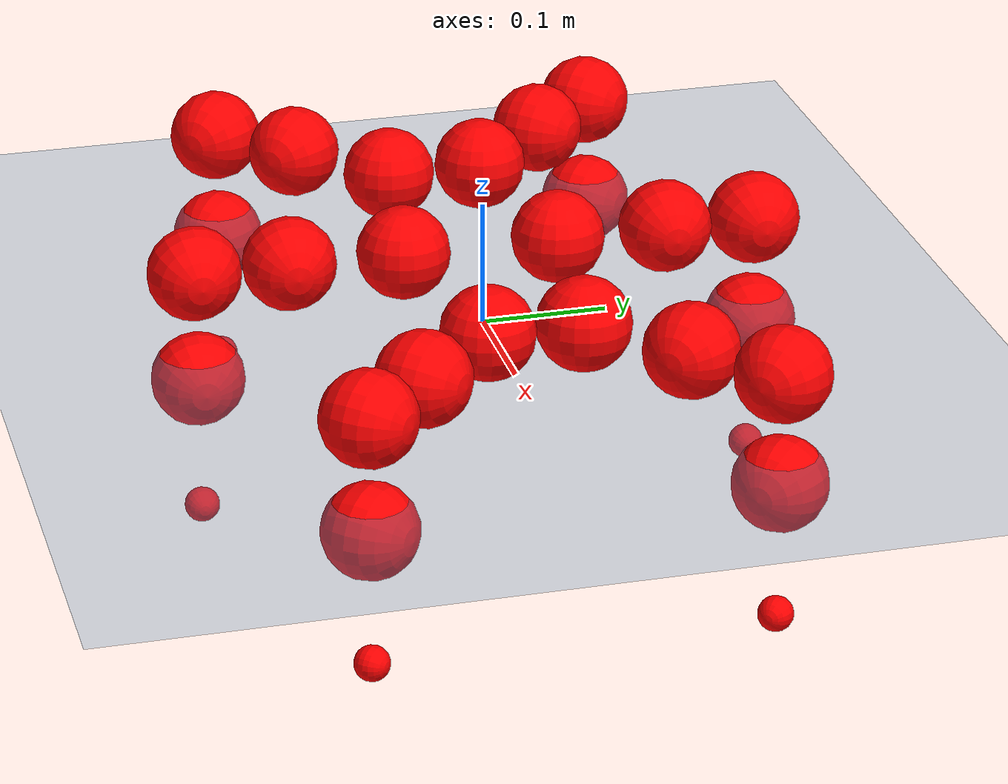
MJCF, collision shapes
<mujoco model="Golem">
  <compiler angle="radian" assetdir="assets" balanceinertia="true" inertiafromgeom="false"/>

  <option timestep="0.005" density="1.2" viscosity="2e-05"/>

  <size nkey="1"/>

  <visual>
    <quality shadowsize="8192"/>
    <map shadowclip="0.5"/>
  </visual>

  <default>
    <default class="/">
      <joint armature="0.01" damping="0.01" frictionloss="0.01"/>
      <geom contype="0" conaffinity="0" group="1" solref="-1000 -80"/>
      <site size="0.01 0.005 0.005" group="5"/>
      <general forcelimited="true" biastype="affine" gainprm="25" biasprm="0 -25 -0.5"/>
      <default class="visual">
        <geom type="mesh" group="2"/>
      </default>
      <default class="collision">
        <geom group="3"/>
      </default>
      <default class="foot">
        <geom size="0.01 0 0" condim="6" group="4" priority="1" solimp="0.015 1 0.01"/>
      </default>
      <default class="reward_collision_sphere">
        <geom group="5" rgba="1 0 0 1"/>
      </default>
    </default>
  </default>

  <asset>
    <texture type="skybox" colorspace="auto" name="//unnamed_texture_0" builtin="gradient" rgb1="0.95 0.95 0.95" rgb2="0.95 0.95 0.95" width="100" height="600"/>
    <texture type="2d" colorspace="auto" name="texplane" builtin="checker" rgb1="0.345 0.575 0.748" rgb2="0.345 0.575 0.748" markrgb="1 1 1" width="512" height="512"/>
    <material name="MatPlane" class="/" texture="texplane" texuniform="true" texrepeat="2 2" specular="0.9"/>
    <mesh name="body" class="/" file="body.stl" scale="0.001 0.001 0.001"/>
    <mesh name="coxa" class="/" file="coxa.stl" scale="0.001 0.001 0.001"/>
    <mesh name="femur" class="/" file="femur.stl" scale="0.001 0.001 0.001"/>
    <mesh name="tibia" class="/" file="tibia.stl" scale="0.001 0.001 0.001"/>
    <mesh name="tarsus" class="/" file="tarsus.stl" scale="0.001 0.001 0.001"/>
  </asset>

  <worldbody>
    <geom name="floor" class="/" size="100 100 0.125" type="plane" group="0" material="MatPlane"/>
    <light name="toplight_shadow" class="/" pos="0 0 5" dir="0.0990148 0.0990148 -0.990148" type="directional" ambient="0.04 0.04 0.04" diffuse="0.55 0.55 0.55" specular="0.12 0.12 0.12"/>
    <light name="toplight_fill" class="/" pos="0 0 5" dir="0.0990148 0.0990148 -0.990148" type="directional" castshadow="false" ambient="0.04 0.04 0.04" diffuse="0.3 0.3 0.3" specular="0.08 0.08 0.08"/>
    <body name="trunk" pos="0.00027386 -0.000872407 -0.000795923" quat="1 1.95521e-05 1.50242e-05 -1.13938e-05">
      <inertial pos="0.000808611 0.000111813 -0.00360115" quat="1 -8.40201e-05 4.67833e-05 -8.94218e-05" mass="2.91523" diaginertia="0.0114045 0.00175554 0.0126958"/>
      <joint name="//unnamed_joint_0" type="free"/>
      <geom name="//unnamed_geom_1" class="/" pos="0 0 0.0671977" quat="1 0 0 0" type="mesh" rgba="0.9 0.9 0.9 1" mesh="body"/>
      <site name="imu" class="/" pos="0.133036 -0.00102698 0.106297" size="0.00927667"/>
      <camera name="track" class="/" pos="0 -1.41573 0" quat="0.707107 0.707107 0 0" mode="trackcom"/>
      <camera name="ego_camera" class="/" pos="0.133273 0 0.104996" quat="-0.5 -0.5 0.5 0.5"/>
      <body name="coxa_RR" pos="-0.181809 -0.0588957 0.067275" quat="0.38269 3.76529e-05 -7.83909e-06 -0.923877">
        <inertial pos="-0.000262529 -0.000493178 0.00114878" quat="0.999992 0.00047807 -0.00392396 -0.000735956" mass="0.159574" diaginertia="0.0115084 0.00180554 0.0129462"/>
        <joint name="coxa_joint_RR" class="/" pos="0 0 0" axis="-0.00357465 0.00184215 -0.999992" range="-3.13739 3.13646" armature="0.00943911" damping="0.00832784" frictionloss="0.00928738"/>
        <geom name="//unnamed_geom_2" class="/" type="mesh" rgba="0.2 0.2 0.2 1" mesh="coxa"/>
        <geom name="//unnamed_geom_3" class="reward_collision_sphere" size="0.0371067" pos="-0.0307552 0 0"/>
        <body name="femur_RR" pos="0.0611181 0.000698512 0.000334732" quat="0.500052 -0.499952 0.50007 0.499926">
          <inertial pos="0.000674655 0.000148858 -0.000193472" quat="0.999999 -2.57789e-05 -0.000260332 0.000985414" mass="0.159763" diaginertia="0.0113443 0.00178532 0.012905"/>
          <joint name="femur_joint_RR" class="/" pos="0 0 0" axis="-0.000853211 -0.000412107 -1" range="-3.13442 3.15512" armature="0.00908645" damping="0.001596" frictionloss="0.00907601"/>
          <geom name="//unnamed_geom_4" class="/" type="mesh" rgba="0.9 0.9 0.9 1" mesh="femur"/>
          <geom name="//unnamed_geom_5" class="reward_collision_sphere" size="0.0371067"/>
          <body name="tibia_RR" pos="0.00132802 -0.0773917 0.00105273" quat="6.3565e-05 1 8.42086e-05 -4.9853e-05">
            <inertial pos="0.00032296 -0.000336492 0.000178448" quat="1 -7.14488e-05 -0.000161617 6.64485e-05" mass="0.16015" diaginertia="0.0114683 0.00178867 0.0130429"/>
            <joint name="tibia_joint_RR" class="/" pos="0 0 0" axis="-0.00195209 -0.0013114 0.999997" range="-3.14943 3.12082" armature="0.00910932" damping="0" frictionloss="0.00929521"/>
            <geom name="//unnamed_geom_6" class="/" type="mesh" rgba="0.2 0.2 0.2 1" mesh="tibia"/>
            <geom name="//unnamed_geom_7" class="reward_collision_sphere" size="0.0371067"/>
            <body name="tarsus_RR" pos="0.0899494 0.000234863 -0.000554813" quat="1 -4.50741e-05 -5.03101e-06 -4.67955e-05">
              <inertial pos="0.0626261 0.000732824 -0.000680789" quat="0.499579 0.498519 0.501399 0.500499" mass="0.160649" diaginertia="0.0114053 0.00176885 0.0128291"/>
              <joint name="tarsus_joint_RR" class="/" pos="0 0 0" axis="0.000404542 0.00510749 0.999987" stiffness="0.00190408" range="-3.13178 3.12028" armature="0.00910736" damping="0.0410189" frictionloss="0.00957689"/>
              <geom name="//unnamed_geom_8" class="/" type="mesh" rgba="0.9 0.9 0.9 1" mesh="tarsus"/>
              <geom name="foot_1" class="foot" size="0.00924538" pos="0.11482 0 0" quat="0 -0.707107 0 0.707107"/>
              <geom name="//unnamed_geom_10" class="reward_collision_sphere" size="0.0371067"/>
              <geom name="//unnamed_geom_11" class="reward_collision_sphere" size="0.013915" pos="0.110206 0 0"/>
              <site name="foot_1" class="foot" pos="0.11482 0 0" quat="0 -0.707107 0 0.707107" size="0.00927667"/>
            </body>
          </body>
        </body>
      </body>
      <body name="coxa_RM" pos="0.000116881 -0.0939876 0.0678486" quat="0.707285 0.000324232 -3.46183e-05 -0.706928">
        <inertial pos="-0.000558874 0.000150604 0.00101291" quat="0.999996 0.000582726 0.00180447 0.00198509" mass="0.160409" diaginertia="0.0114195 0.00176593 0.0126084"/>
        <joint name="coxa_joint_RM" class="/" pos="0 0 0" axis="0.00208033 -0.00187198 -0.999996" range="-3.13473 3.14559" armature="0.00922941" damping="0.0112664" frictionloss="0.0088563"/>
        <geom name="//unnamed_geom_12" class="/" type="mesh" rgba="0.2 0.2 0.2 1" mesh="coxa"/>
        <geom name="//unnamed_geom_13" class="reward_collision_sphere" size="0.0371067" pos="-0.0307552 0 0"/>
        <body name="femur_RM" pos="0.0599591 -0.00105106 -6.52836e-05" quat="0.499952 -0.500021 0.499988 0.500038">
          <inertial pos="0.000459186 0.00018242 5.92462e-05" quat="1 0.000178588 0.000135429 3.36182e-05" mass="0.161103" diaginertia="0.0114067 0.00180083 0.0128606"/>
          <joint name="femur_joint_RM" class="/" pos="0 0 0" axis="0.00414006 0.00209199 -0.999989" range="-3.14411 3.13899" armature="0.00955407" damping="0.00803325" frictionloss="0.00927565"/>
          <geom name="//unnamed_geom_14" class="/" type="mesh" rgba="0.9 0.9 0.9 1" mesh="femur"/>
          <geom name="//unnamed_geom_15" class="reward_collision_sphere" size="0.0371067"/>
          <body name="tibia_RM" pos="0.000162272 -0.0749986 -0.000193971" quat="-1.17158e-06 1 1.86969e-05 -3.0202e-05">
            <inertial pos="-0.00077585 -0.000558128 -0.000138974" quat="1 0.000706743 5.00239e-06 -1.13979e-05" mass="0.160389" diaginertia="0.0113119 0.00179296 0.0127283"/>
            <joint name="tibia_joint_RM" class="/" pos="0 0 0" axis="-0.000360515 -0.00146248 0.999999" range="-3.13694 3.15644" armature="0.00931806" damping="0.0106794" frictionloss="0.00949862"/>
            <geom name="//unnamed_geom_16" class="/" type="mesh" rgba="0.2 0.2 0.2 1" mesh="tibia"/>
            <geom name="//unnamed_geom_17" class="reward_collision_sphere" size="0.0371067"/>
            <body name="tarsus_RM" pos="0.0896447 -0.000354173 -0.000292954" quat="1 -4.58551e-05 7.52863e-05 -2.57886e-05">
              <inertial pos="0.0620872 0.000683558 -0.000413253" quat="0.501135 0.500558 0.499863 0.498439" mass="0.160526" diaginertia="0.0113638 0.00179817 0.0128688"/>
              <joint name="tarsus_joint_RM" class="/" pos="0 0 0" axis="3.83866e-05 3.863e-05 1" range="-3.15681 3.13166" armature="0.00905993" damping="0.00781451" frictionloss="0.00921668"/>
              <geom name="//unnamed_geom_18" class="/" type="mesh" rgba="0.9 0.9 0.9 1" mesh="tarsus"/>
              <geom name="foot_2" class="foot" size="0.00944462" pos="0.11482 0 0" quat="0 -0.707107 0 0.707107"/>
              <geom name="//unnamed_geom_20" class="reward_collision_sphere" size="0.0371067"/>
              <geom name="//unnamed_geom_21" class="reward_collision_sphere" size="0.013915" pos="0.110206 0 0"/>
              <site name="foot_2" class="foot" pos="0.11482 0 0" quat="0 -0.707107 0 0.707107" size="0.00927667"/>
            </body>
          </body>
        </body>
      </body>
      <body name="coxa_RF" pos="0.182969 -0.0587225 0.0678151" quat="0.923872 -6.48853e-05 0.000109901 -0.382701">
        <inertial pos="2.73361e-06 -0.000948615 -0.000280234" quat="1 3.64849e-06 4.04869e-05 9.44304e-05" mass="0.160085" diaginertia="0.0113469 0.00178037 0.0128617"/>
        <joint name="coxa_joint_RF" class="/" pos="0 0 0" axis="-0.000415166 0.000300404 -1" range="-3.14124 3.14715" armature="0.00909262" damping="0.0140618" frictionloss="0.00913501"/>
        <geom name="//unnamed_geom_22" class="/" type="mesh" rgba="0.2 0.2 0.2 1" mesh="coxa"/>
        <geom name="//unnamed_geom_23" class="reward_collision_sphere" size="0.0371067" pos="-0.0307552 0 0"/>
        <body name="femur_RF" pos="0.0602836 -0.000799905 -0.000618621" quat="0.499935 -0.500015 0.500065 0.499984">
          <inertial pos="-0.000196356 0.000632991 -0.000231735" quat="0.999998 -0.00109501 -0.00173685 0.000676016" mass="0.160889" diaginertia="0.0113232 0.0018107 0.0128643"/>
          <joint name="femur_joint_RF" class="/" pos="0 0 0" axis="0.000186169 0.000613831 -1" range="-3.14687 3.14136" armature="0.0094466" damping="0.0063879" frictionloss="0.00898125"/>
          <geom name="//unnamed_geom_24" class="/" type="mesh" rgba="0.9 0.9 0.9 1" mesh="femur"/>
          <geom name="//unnamed_geom_25" class="reward_collision_sphere" size="0.0371067"/>
          <body name="tibia_RF" pos="0.00018505 -0.0759363 0.000358528" quat="-5.37753e-07 1 2.93327e-07 1.12082e-06">
            <inertial pos="-0.000558808 0.000524508 -0.000470886" quat="1 0.00023056 -9.19266e-06 -0.000164485" mass="0.160713" diaginertia="0.0115171 0.00176832 0.0127901"/>
            <joint name="tibia_joint_RF" class="/" pos="0 0 0" axis="0.000126796 0.000599446 1" range="-3.14723 3.12888" armature="0.00932379" damping="0.00827797" frictionloss="0.00927477"/>
            <geom name="//unnamed_geom_26" class="/" type="mesh" rgba="0.2 0.2 0.2 1" mesh="tibia"/>
            <geom name="//unnamed_geom_27" class="reward_collision_sphere" size="0.0371067"/>
            <body name="tarsus_RF" pos="0.0908014 -0.000111901 -1.85093e-05" quat="1 0.000117782 3.07208e-05 8.66898e-05">
              <inertial pos="0.0606943 0.000633364 9.26731e-05" quat="0.500123 0.49937 0.500394 0.500112" mass="0.160295" diaginertia="0.0114002 0.00176905 0.0126404"/>
              <joint name="tarsus_joint_RF" class="/" pos="0 0 0" axis="-0.000161403 0.00076205 1" stiffness="0.000297926" range="-3.1341 3.12926" armature="0.00885877" damping="0" frictionloss="0.00961288"/>
              <geom name="//unnamed_geom_28" class="/" type="mesh" rgba="0.9 0.9 0.9 1" mesh="tarsus"/>
              <geom name="foot_3" class="foot" size="0.00902079" pos="0.11482 0 0" quat="0 -0.707107 0 0.707107"/>
              <geom name="//unnamed_geom_30" class="reward_collision_sphere" size="0.0371067"/>
              <geom name="//unnamed_geom_31" class="reward_collision_sphere" size="0.013915" pos="0.110206 0 0"/>
              <site name="foot_3" class="foot" pos="0.11482 0 0" quat="0 -0.707107 0 0.707107" size="0.00927667"/>
            </body>
          </body>
        </body>
      </body>
      <body name="coxa_LR" pos="-0.182142 0.0611322 0.0678481" quat="0.382782 -2.22343e-05 9.71128e-05 0.923839">
        <inertial pos="7.9574e-05 -0.000869017 -0.000234002" quat="0.999997 0.00175026 0.000236221 -0.0013933" mass="0.159788" diaginertia="0.0112136 0.00177862 0.0126572"/>
        <joint name="coxa_joint_LR" class="/" pos="0 0 0" axis="-0.00135694 -0.0032686 -0.999994" range="-3.14586 3.15337" armature="0.00967811" damping="0.00521741" frictionloss="0.00953472"/>
        <geom name="//unnamed_geom_32" class="/" type="mesh" rgba="0.2 0.2 0.2 1" mesh="coxa"/>
        <geom name="//unnamed_geom_33" class="reward_collision_sphere" size="0.0371067" pos="-0.0307552 0 0"/>
        <body name="femur_LR" pos="0.0608715 -0.00156769 -6.07744e-05" quat="0.49995 -0.500087 0.500034 0.49993">
          <inertial pos="0.000121258 -0.000373515 0.000194756" quat="0.999991 -0.00310547 0.00225954 -0.00151981" mass="0.159557" diaginertia="0.0113583 0.00176842 0.0128269"/>
          <joint name="femur_joint_LR" class="/" pos="0 0 0" axis="-0.00111979 0.00278761 0.999995" range="-3.13435 3.14455" armature="0.00953436" damping="0.00339644" frictionloss="0.00898817"/>
          <geom name="//unnamed_geom_34" class="/" type="mesh" rgba="0.9 0.9 0.9 1" mesh="femur"/>
          <geom name="//unnamed_geom_35" class="reward_collision_sphere" size="0.0371067"/>
          <body name="tibia_LR" pos="0.000814975 -0.0774691 -0.0020749" quat="-1.36425e-05 1 -9.45471e-06 -9.91663e-06">
            <inertial pos="-0.000233114 -3.20399e-05 1.44753e-05" quat="0.999999 -0.000745431 -0.00152168 -9.00077e-05" mass="0.158446" diaginertia="0.0111869 0.0017551 0.0126491"/>
            <joint name="tibia_joint_LR" class="/" pos="0 0 0" axis="-0.00365497 0.00358561 -0.999987" range="-3.12415 3.15023" armature="0.00939115" damping="0.00388904" frictionloss="0.00914107"/>
            <geom name="//unnamed_geom_36" class="/" type="mesh" rgba="0.2 0.2 0.2 1" mesh="tibia"/>
            <geom name="//unnamed_geom_37" class="reward_collision_sphere" size="0.0371067"/>
            <body name="tarsus_LR" pos="0.0907136 0.000685465 0.00119517" quat="1 -0.000107571 1.21496e-05 0.000108899">
              <inertial pos="0.0625287 0.000516469 -0.000488765" quat="0.50021 0.500001 0.500034 0.499754" mass="0.161678" diaginertia="0.0113278 0.00179712 0.0128277"/>
              <joint name="tarsus_joint_LR" class="/" pos="0 0 0" axis="0.00232603 0.00223076 -0.999995" range="-3.13064 3.14606" armature="0.00919555" damping="0.00414502" frictionloss="0.00925893"/>
              <geom name="//unnamed_geom_38" class="/" type="mesh" rgba="0.9 0.9 0.9 1" mesh="tarsus"/>
              <geom name="foot_4" class="foot" size="0.00876877" pos="0.11482 0 0" quat="0.707107 0 -0.707107 0"/>
              <geom name="//unnamed_geom_40" class="reward_collision_sphere" size="0.0371067"/>
              <geom name="//unnamed_geom_41" class="reward_collision_sphere" size="0.013915" pos="0.110206 0 0"/>
              <site name="foot_4" class="foot" pos="0.11482 0 0" quat="0.707107 0 -0.707107 0" size="0.00927667"/>
            </body>
          </body>
        </body>
      </body>
      <body name="coxa_LM" pos="-0.0016594 0.0929221 0.0670941" quat="0.707144 1.137e-05 -0.000173568 0.70707">
        <inertial pos="0.000579991 0.000111853 0.000277609" quat="0.99999 -0.00394908 0.00171655 0.000887535" mass="0.159878" diaginertia="0.0114484 0.00178053 0.0127601"/>
        <joint name="coxa_joint_LM" class="/" pos="0 0 0" axis="-0.000542019 2.47124e-05 -1" range="-3.14673 3.13271" armature="0.00899014" damping="0.0100714" frictionloss="0.00900955"/>
        <geom name="//unnamed_geom_42" class="/" type="mesh" rgba="0.2 0.2 0.2 1" mesh="coxa"/>
        <geom name="//unnamed_geom_43" class="reward_collision_sphere" size="0.0371067" pos="-0.0307552 0 0"/>
        <body name="femur_LM" pos="0.0579571 0.00163359 -0.00115784" quat="0.499921 -0.499658 0.500447 0.499974">
          <inertial pos="-0.000752884 0.000315038 0.000718053" quat="0.999999 0.00113446 -0.000130486 -0.000449834" mass="0.16044" diaginertia="0.0112664 0.0017658 0.0127905"/>
          <joint name="femur_joint_LM" class="/" pos="0 0 0" axis="0.000486307 -0.00113295 0.999999" stiffness="0.00046386" range="-3.1377 3.15012" armature="0.00891205" damping="0.00057689" frictionloss="0.00920767"/>
          <geom name="//unnamed_geom_44" class="/" type="mesh" rgba="0.9 0.9 0.9 1" mesh="femur"/>
          <geom name="//unnamed_geom_45" class="reward_collision_sphere" size="0.0371067"/>
          <body name="tibia_LM" pos="0.00099791 -0.0738514 0.0012279" quat="0.000364563 1 0.000165921 6.29025e-05">
            <inertial pos="0.00032193 -0.00131467 -3.91936e-05" quat="0.999991 0.000930673 0.000894156 0.00415755" mass="0.159849" diaginertia="0.0113269 0.00177426 0.0127665"/>
            <joint name="tibia_joint_LM" class="/" pos="0 0 0" axis="2.03737e-05 -0.00151733 -0.999999" range="-3.13806 3.14336" armature="0.00925422" damping="0" frictionloss="0.00964262"/>
            <geom name="//unnamed_geom_46" class="/" type="mesh" rgba="0.2 0.2 0.2 1" mesh="tibia"/>
            <geom name="//unnamed_geom_47" class="reward_collision_sphere" size="0.0371067"/>
            <body name="tarsus_LM" pos="0.089412 -0.000162869 -0.00179316" quat="1 -9.82521e-05 -0.000372162 4.21875e-05">
              <inertial pos="0.0627652 -0.000186614 0.000624407" quat="0.500003 0.500064 0.500053 0.49988" mass="0.156661" diaginertia="0.0112685 0.0017518 0.0125381"/>
              <joint name="tarsus_joint_LM" class="/" pos="0 0 0" axis="0.000837555 1.87901e-05 -1" range="-3.12572 3.14686" armature="0.00923577" damping="0" frictionloss="0.00913517"/>
              <geom name="//unnamed_geom_48" class="/" type="mesh" rgba="0.9 0.9 0.9 1" mesh="tarsus"/>
              <geom name="foot_5" class="foot" size="0.00923213" pos="0.11482 0 0" quat="0.707107 0 -0.707107 0"/>
              <geom name="//unnamed_geom_50" class="reward_collision_sphere" size="0.0371067"/>
              <geom name="//unnamed_geom_51" class="reward_collision_sphere" size="0.013915" pos="0.110206 0 0"/>
              <site name="foot_5" class="foot" pos="0.11482 0 0" quat="0.707107 0 -0.707107 0" size="0.00927667"/>
            </body>
          </body>
        </body>
      </body>
      <body name="coxa_LF" pos="0.183162 0.059518 0.0670015" quat="0.923888 -0.000107997 0.000134682 0.382662">
        <inertial pos="0.000243339 -0.000250893 0.000548883" quat="0.999991 0.00217287 -0.00201484 -0.00292444" mass="0.160597" diaginertia="0.0112276 0.00177145 0.0126687"/>
        <joint name="coxa_joint_LF" class="/" pos="0 0 0" axis="-0.00288679 8.68071e-05 -0.999996" range="-3.12744 3.15054" armature="0.00921782" damping="0.00123807" frictionloss="0.009675"/>
        <geom name="//unnamed_geom_52" class="/" type="mesh" rgba="0.2 0.2 0.2 1" mesh="coxa"/>
        <geom name="//unnamed_geom_53" class="reward_collision_sphere" size="0.0371067" pos="-0.0307552 0 0"/>
        <body name="femur_LF" pos="0.0605972 0.000217046 -0.000361502" quat="0.499949 -0.500052 0.500073 0.499926">
          <inertial pos="0.000519257 -1.37677e-05 -0.000378522" quat="0.999998 -7.06373e-05 -0.00142525 0.00129212" mass="0.158202" diaginertia="0.0112924 0.00176596 0.0128522"/>
          <joint name="femur_joint_LF" class="/" pos="0 0 0" axis="-0.00176282 -0.000702901 0.999998" range="-3.15723 3.14821" armature="0.00911089" damping="0" frictionloss="0.00907591"/>
          <geom name="//unnamed_geom_54" class="/" type="mesh" rgba="0.9 0.9 0.9 1" mesh="femur"/>
          <geom name="//unnamed_geom_55" class="reward_collision_sphere" size="0.0371067"/>
          <body name="tibia_LF" pos="0.000798384 -0.0766392 -0.000505524" quat="1.02349e-05 1 -9.50714e-06 1.99208e-05">
            <inertial pos="9.74891e-05 -0.000662191 -0.000445313" quat="0.999999 0.00115071 0.000651921 -0.000871842" mass="0.160836" diaginertia="0.0112817 0.00177082 0.0127676"/>
            <joint name="tibia_joint_LF" class="/" pos="0 0 0" axis="-0.002202 -0.000961122 -0.999997" range="-3.13811 3.13338" armature="0.00972999" damping="0.00398634" frictionloss="0.00894054"/>
            <geom name="//unnamed_geom_56" class="/" type="mesh" rgba="0.2 0.2 0.2 1" mesh="tibia"/>
            <geom name="//unnamed_geom_57" class="reward_collision_sphere" size="0.0371067"/>
            <body name="tarsus_LF" pos="0.0899059 6.77239e-05 -0.000343533" quat="1 -8.1849e-05 -2.77255e-05 -2.78283e-05">
              <inertial pos="0.0626549 -3.93202e-05 0.000775697" quat="0.497644 0.500687 0.498873 0.502781" mass="0.158712" diaginertia="0.011328 0.00177182 0.0126993"/>
              <joint name="tarsus_joint_LF" class="/" pos="0 0 0" axis="-0.00513922 -0.0017048 -0.999985" stiffness="0.0307282" range="-3.12479 3.1242" armature="0.00928051" damping="0.0246913" frictionloss="0.00941415"/>
              <geom name="//unnamed_geom_58" class="/" type="mesh" rgba="0.9 0.9 0.9 1" mesh="tarsus"/>
              <geom name="foot_6" class="foot" size="0.00910619" pos="0.11482 0 0" quat="0.707107 0 -0.707107 0"/>
              <geom name="//unnamed_geom_60" class="reward_collision_sphere" size="0.0371067"/>
              <geom name="//unnamed_geom_61" class="reward_collision_sphere" size="0.013915" pos="0.110206 0 0"/>
              <site name="foot_6" class="foot" pos="0.11482 0 0" quat="0.707107 0 -0.707107 0" size="0.00927667"/>
            </body>
          </body>
        </body>
      </body>
    </body>
  </worldbody>

  <contact>
    <pair class="/" geom1="floor" geom2="foot_1" name="//unnamed_contact_0"/>
    <pair class="/" geom1="floor" geom2="foot_2" name="//unnamed_contact_1"/>
    <pair class="/" geom1="floor" geom2="foot_3" name="//unnamed_contact_2"/>
    <pair class="/" geom1="floor" geom2="foot_4" name="//unnamed_contact_3"/>
    <pair class="/" geom1="floor" geom2="foot_5" name="//unnamed_contact_4"/>
    <pair class="/" geom1="floor" geom2="foot_6" name="//unnamed_contact_5"/>
  </contact>

  <actuator>
    <general name="coxa_joint_RR" class="/" joint="coxa_joint_RR" forcerange="-6.74589 6.74589" gainprm="22.3755" biasprm="0 -22.3755 -0.476436"/>
    <general name="femur_joint_RR" class="/" joint="femur_joint_RR" forcerange="-6.75498 6.75498" gainprm="22.3755" biasprm="0 -22.3755 -0.476436"/>
    <general name="tibia_joint_RR" class="/" joint="tibia_joint_RR" forcerange="-6.76751 6.76751" gainprm="22.3755" biasprm="0 -22.3755 -0.476436"/>
    <general name="tarsus_joint_RR" class="/" joint="tarsus_joint_RR" forcerange="-6.59933 6.59933" gainprm="22.3755" biasprm="0 -22.3755 -0.476436"/>
    <general name="coxa_joint_RM" class="/" joint="coxa_joint_RM" forcerange="-6.66003 6.66003" gainprm="22.3755" biasprm="0 -22.3755 -0.476436"/>
    <general name="femur_joint_RM" class="/" joint="femur_joint_RM" forcerange="-6.65303 6.65303" gainprm="22.3755" biasprm="0 -22.3755 -0.476436"/>
    <general name="tibia_joint_RM" class="/" joint="tibia_joint_RM" forcerange="-6.99859 6.99859" gainprm="22.3755" biasprm="0 -22.3755 -0.476436"/>
    <general name="tarsus_joint_RM" class="/" joint="tarsus_joint_RM" forcerange="-6.72656 6.72656" gainprm="22.3755" biasprm="0 -22.3755 -0.476436"/>
    <general name="coxa_joint_RF" class="/" joint="coxa_joint_RF" forcerange="-6.73676 6.73676" gainprm="22.3755" biasprm="0 -22.3755 -0.476436"/>
    <general name="femur_joint_RF" class="/" joint="femur_joint_RF" forcerange="-6.98357 6.98357" gainprm="22.3755" biasprm="0 -22.3755 -0.476436"/>
    <general name="tibia_joint_RF" class="/" joint="tibia_joint_RF" forcerange="-6.61122 6.61122" gainprm="22.3755" biasprm="0 -22.3755 -0.476436"/>
    <general name="tarsus_joint_RF" class="/" joint="tarsus_joint_RF" forcerange="-6.58023 6.58023" gainprm="22.3755" biasprm="0 -22.3755 -0.476436"/>
    <general name="coxa_joint_LR" class="/" joint="coxa_joint_LR" forcerange="-6.76081 6.76081" gainprm="22.3755" biasprm="0 -22.3755 -0.476436"/>
    <general name="femur_joint_LR" class="/" joint="femur_joint_LR" forcerange="-6.72523 6.72523" gainprm="22.3755" biasprm="0 -22.3755 -0.476436"/>
    <general name="tibia_joint_LR" class="/" joint="tibia_joint_LR" forcerange="-6.82451 6.82451" gainprm="22.3755" biasprm="0 -22.3755 -0.476436"/>
    <general name="tarsus_joint_LR" class="/" joint="tarsus_joint_LR" forcerange="-6.76051 6.76051" gainprm="22.3755" biasprm="0 -22.3755 -0.476436"/>
    <general name="coxa_joint_LM" class="/" joint="coxa_joint_LM" forcerange="-6.6556 6.6556" gainprm="22.3755" biasprm="0 -22.3755 -0.476436"/>
    <general name="femur_joint_LM" class="/" joint="femur_joint_LM" forcerange="-6.7657 6.7657" gainprm="22.3755" biasprm="0 -22.3755 -0.476436"/>
    <general name="tibia_joint_LM" class="/" joint="tibia_joint_LM" forcerange="-6.83298 6.83298" gainprm="22.3755" biasprm="0 -22.3755 -0.476436"/>
    <general name="tarsus_joint_LM" class="/" joint="tarsus_joint_LM" forcerange="-6.71581 6.71581" gainprm="22.3755" biasprm="0 -22.3755 -0.476436"/>
    <general name="coxa_joint_LF" class="/" joint="coxa_joint_LF" forcerange="-6.58089 6.58089" gainprm="22.3755" biasprm="0 -22.3755 -0.476436"/>
    <general name="femur_joint_LF" class="/" joint="femur_joint_LF" forcerange="-6.81587 6.81587" gainprm="22.3755" biasprm="0 -22.3755 -0.476436"/>
    <general name="tibia_joint_LF" class="/" joint="tibia_joint_LF" forcerange="-6.89622 6.89622" gainprm="22.3755" biasprm="0 -22.3755 -0.476436"/>
    <general name="tarsus_joint_LF" class="/" joint="tarsus_joint_LF" forcerange="-6.98286 6.98286" gainprm="22.3755" biasprm="0 -22.3755 -0.476436"/>
  </actuator>

  <sensor>
    <gyro site="imu" name="imu_angular_velocity"/>
    <velocimeter site="imu" name="imu_linear_velocity"/>
    <framelinvel objtype="site" objname="foot_1" name="foot_1_global_linear_velocity"/>
    <framelinvel objtype="site" objname="foot_2" name="foot_2_global_linear_velocity"/>
    <framelinvel objtype="site" objname="foot_3" name="foot_3_global_linear_velocity"/>
    <framelinvel objtype="site" objname="foot_4" name="foot_4_global_linear_velocity"/>
    <framelinvel objtype="site" objname="foot_5" name="foot_5_global_linear_velocity"/>
    <framelinvel objtype="site" objname="foot_6" name="foot_6_global_linear_velocity"/>
  </sensor>

  <keyframe>
    <key name="home" qpos="0 0 0.1457 1 0 0 0 0 0 0 0 0 0 0 0 0 0 0 0 0 0 0 0 0 0 0 0 0 0 0 0"/>
  </keyframe>
</mujoco>
